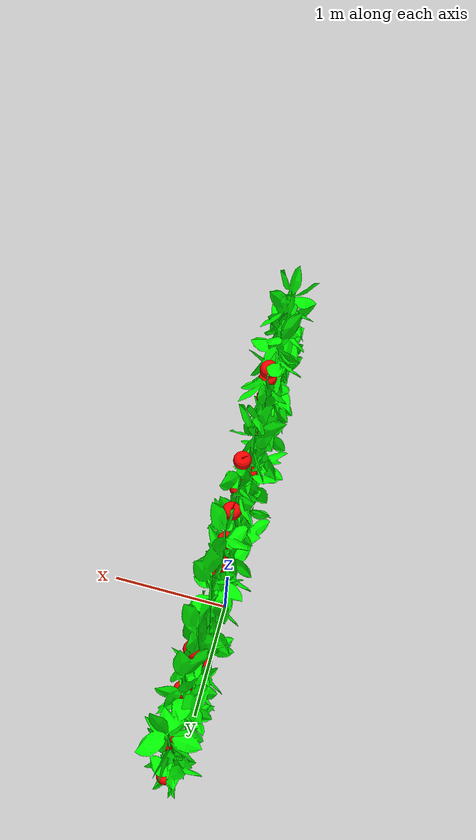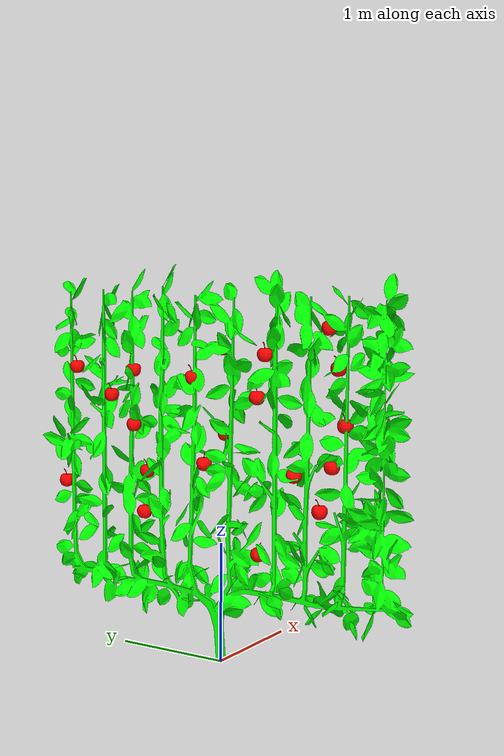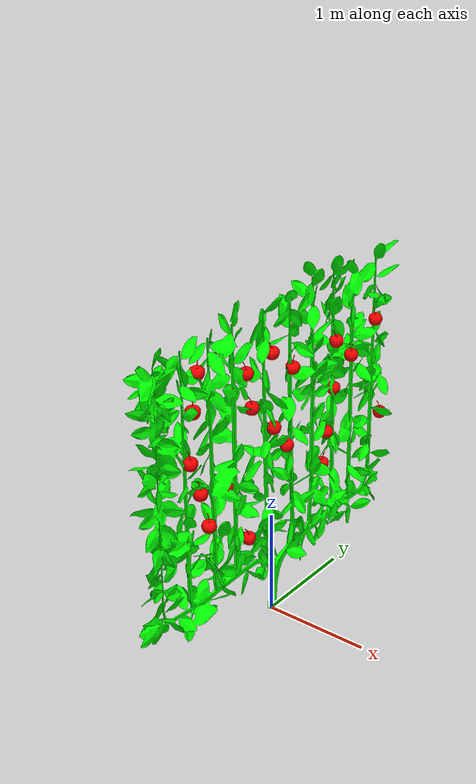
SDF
<?xml version="1.0" ?>
<sdf version="1.5">
  <model name="plant_full4">

    <include>
      <name>p1</name>
      <pose>0.0 0 0 0 0 0</pose>
      <uri>model://plant</uri>
    </include>

<include>
<name>a1</name>
<pose>0 1.1737 2.2696 0 0 1.3966 </pose>
<uri>model://apple</uri>
</include>

<include>
<name>a2</name>
<pose>0 0.32803 2.4702 0 0 0.48822 </pose>
<uri>model://apple</uri>
</include>

<include>
<name>a3</name>
<pose>0 0.78797 1.6343 0 0 1.5248 </pose>
<uri>model://apple</uri>
</include>

<include>
<name>a4</name>
<pose>0 -0.048306 2.7279 0 0 3.0164 </pose>
<uri>model://apple</uri>
</include>

<include>
<name>a5</name>
<pose>0 -1.1151 2.1662 0 0 1.5746 </pose>
<uri>model://apple</uri>
</include>

<include>
<name>a6</name>
<pose>0 -1.0383 2.6087 0 0 1.0816 </pose>
<uri>model://apple</uri>
</include>

<include>
<name>a7</name>
<pose>0 -0.018127 2.0204 0 0 1.8055 </pose>
<uri>model://apple</uri>
</include>

<include>
<name>a8</name>
<pose>0 0.8156 1.2879 0 0 0.081996 </pose>
<uri>model://apple</uri>
</include>

<include>
<name>a9</name>
<pose>0 1.5452 2.4957 0 0 1.7461 </pose>
<uri>model://apple</uri>
</include>

<include>
<name>a10</name>
<pose>0 -0.70148 1.7312 0 0 2.6493 </pose>
<uri>model://apple</uri>
</include>

<include>
<name>a11</name>
<pose>0 -0.39945 2.6888 0 0 1.9085 </pose>
<uri>model://apple</uri>
</include>

<include>
<name>a12</name>
<pose>0 -0.38818 1.0536 0 0 3.0288 </pose>
<uri>model://apple</uri>
</include>

<include>
<name>a13</name>
<pose>0 -1 1.8314 0 0 1.5537 </pose>
<uri>model://apple</uri>
</include>

<include>
<name>a14</name>
<pose>0 1.6762 1.4658 0 0 1.7316 </pose>
<uri>model://apple</uri>
</include>

<include>
<name>a15</name>
<pose>0 -0.33244 2.3367 0 0 2.1067 </pose>
<uri>model://apple</uri>
</include>

<include>
<name>a16</name>
<pose>0 0.1554 1.7521 0 0 2.699 </pose>
<uri>model://apple</uri>
</include>

<include>
<name>a17</name>
<pose>0 0.93974 2.0284 0 0 0.70357 </pose>
<uri>model://apple</uri>
</include>

<include>
<name>a18</name>
<pose>0 0.894 2.4995 0 0 2.4275 </pose>
<uri>model://apple</uri>
</include>

<include>
<name>a19</name>
<pose>0 -0.88387 1.4649 0 0 1.2513 </pose>
<uri>model://apple</uri>
</include>

<include>
<name>a20</name>
<pose>0 -0.95411 2.9235 0 0 0.69676 </pose>
<uri>model://apple</uri>
</include>

  </model>
</sdf>

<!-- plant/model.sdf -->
<sdf version="1.5">
  <model name="plant">
    <static>true</static>
    <link name="link">
      <pose>0 0 0 0 0 0</pose>
      <visual name="visual">
        <geometry>
          <mesh>
            <uri>model://plant/meshes/plant.stl</uri>
          </mesh>
        </geometry>
        <material>
          <ambient>0 1 0 1</ambient>
          <diffuse>0 1 0 1</diffuse>
          <specular>0.1 0.1 0.1 1</specular>
          <emissive>0 0 0 0</emissive>
        </material>
      </visual>
    </link>
  </model>
</sdf>

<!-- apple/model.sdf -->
<sdf version="1.5">
  <model name="apple">
    <static>true</static>
    <link name="link">
      <pose>0 0 0 0 0 0</pose>
      <visual name="visual">
        <geometry>
          <mesh>
            <uri>model://apple/meshes/apple.stl</uri>
            <scale>0.5 0.5 0.5</scale>
          </mesh>
        </geometry>
        <material>
          <ambient>1 0 0 1</ambient>
          <diffuse>1 0 0 1</diffuse>
          <specular>0.1 0.1 0.1 1</specular>
          <emissive>0 0 0 0</emissive>
        </material>
      </visual>
    </link>
  </model>
</sdf>
